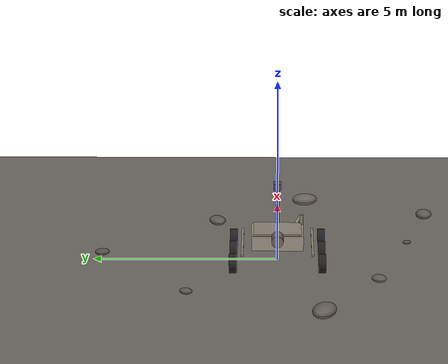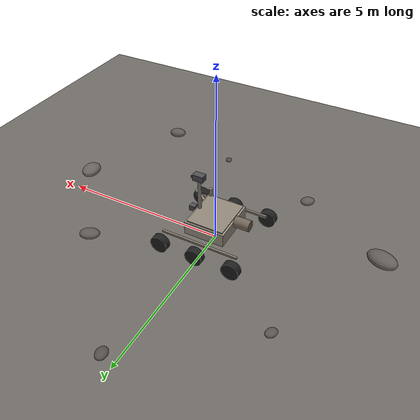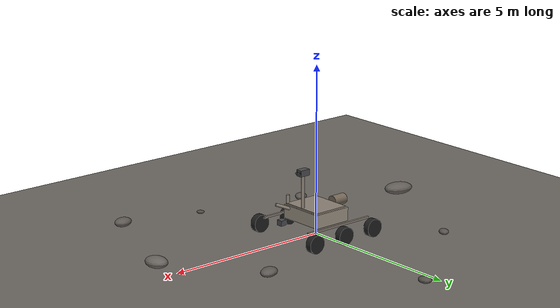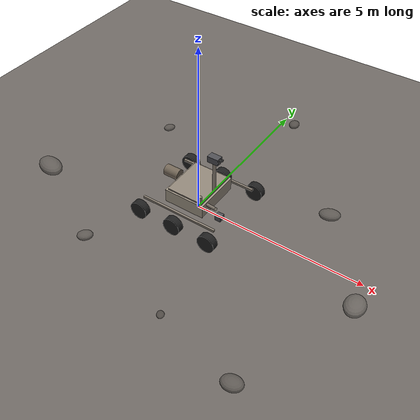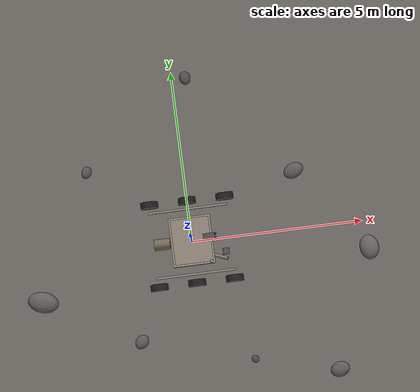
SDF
<?xml version="1.0"?>
<sdf version="1.9">
  <world name="moon">
    <!-- Physics. Plugin filenames are Fortress (ignition-gazebo*); on
         Harmonic these become gz-sim-*. Either is fine — Ignition keeps
         backward-compatible aliases. -->
    <plugin filename="ignition-gazebo-physics-system"          name="ignition::gazebo::systems::Physics"/>
    <plugin filename="ignition-gazebo-user-commands-system"    name="ignition::gazebo::systems::UserCommands"/>
    <plugin filename="ignition-gazebo-scene-broadcaster-system" name="ignition::gazebo::systems::SceneBroadcaster"/>
    <plugin filename="ignition-gazebo-contact-system"          name="ignition::gazebo::systems::Contact"/>

    <physics name="default" type="ignored">
      <max_step_size>0.004</max_step_size>
      <real_time_factor>1.0</real_time_factor>
    </physics>

    <!-- Lunar gravity -->
    <gravity>0 0 -1.622</gravity>

    <!-- Scene: deep space backdrop, low ambient (Moon has no atmosphere) -->
    <scene>
      <ambient>0.04 0.04 0.04 1</ambient>
      <background>0.0 0.0 0.0 1</background>
      <grid>false</grid>
      <origin_visual>false</origin_visual>
    </scene>

    <!-- Sun (single hard directional light, like real lunar surface) -->
    <light type="directional" name="sun">
      <cast_shadows>true</cast_shadows>
      <pose>0 0 100 0 0.55 -0.6</pose>
      <diffuse>1.0 0.98 0.92 1</diffuse>
      <specular>0.4 0.4 0.4 1</specular>
      <direction>-0.6 -0.4 -0.7</direction>
    </light>

    <!-- Ground plane: 200x200, Moon-gray regolith colour -->
    <model name="lunar_ground">
      <static>true</static>
      <link name="link">
        <collision name="collision">
          <geometry><plane><normal>0 0 1</normal><size>200 200</size></plane></geometry>
        </collision>
        <visual name="visual">
          <geometry><plane><normal>0 0 1</normal><size>200 200</size></plane></geometry>
          <material>
            <ambient>0.18 0.17 0.16 1</ambient>
            <diffuse>0.42 0.40 0.38 1</diffuse>
            <specular>0.05 0.05 0.05 1</specular>
          </material>
        </visual>
      </link>
    </model>

    <!-- Scattered rocks (ellipsoids, varying poses) -->
    <model name="rock_1">
      <static>true</static><pose>3.2 1.7 0.10 0 0 0.4</pose>
      <link name="l"><visual name="v"><geometry><ellipsoid><radii>0.30 0.22 0.12</radii></ellipsoid></geometry>
        <material><ambient>0.18 0.17 0.16 1</ambient><diffuse>0.36 0.34 0.32 1</diffuse></material></visual></link>
    </model>
    <model name="rock_2">
      <static>true</static><pose>-2.8 2.4 0.07 0 0 1.1</pose>
      <link name="l"><visual name="v"><geometry><ellipsoid><radii>0.18 0.14 0.08</radii></ellipsoid></geometry>
        <material><ambient>0.18 0.17 0.16 1</ambient><diffuse>0.34 0.32 0.30 1</diffuse></material></visual></link>
    </model>
    <model name="rock_3">
      <static>true</static><pose>-4.5 -1.2 0.16 0 0 -0.3</pose>
      <link name="l"><visual name="v"><geometry><ellipsoid><radii>0.45 0.30 0.18</radii></ellipsoid></geometry>
        <material><ambient>0.20 0.19 0.17 1</ambient><diffuse>0.38 0.36 0.34 1</diffuse></material></visual></link>
    </model>
    <model name="rock_4">
      <static>true</static><pose>1.4 -3.6 0.05 0 0 2.1</pose>
      <link name="l"><visual name="v"><geometry><ellipsoid><radii>0.12 0.10 0.05</radii></ellipsoid></geometry>
        <material><ambient>0.18 0.17 0.16 1</ambient><diffuse>0.30 0.28 0.26 1</diffuse></material></visual></link>
    </model>
    <model name="rock_5">
      <static>true</static><pose>-1.8 -2.7 0.09 0 0 0.8</pose>
      <link name="l"><visual name="v"><geometry><ellipsoid><radii>0.22 0.18 0.10</radii></ellipsoid></geometry>
        <material><ambient>0.19 0.18 0.16 1</ambient><diffuse>0.36 0.34 0.32 1</diffuse></material></visual></link>
    </model>
    <model name="rock_6">
      <static>true</static><pose>5.1 -0.8 0.14 0 0 1.7</pose>
      <link name="l"><visual name="v"><geometry><ellipsoid><radii>0.36 0.28 0.16</radii></ellipsoid></geometry>
        <material><ambient>0.20 0.19 0.17 1</ambient><diffuse>0.40 0.38 0.36 1</diffuse></material></visual></link>
    </model>
    <model name="rock_7">
      <static>true</static><pose>0.4 4.8 0.08 0 0 -1.4</pose>
      <link name="l"><visual name="v"><geometry><ellipsoid><radii>0.20 0.16 0.09</radii></ellipsoid></geometry>
        <material><ambient>0.17 0.16 0.15 1</ambient><diffuse>0.32 0.30 0.28 1</diffuse></material></visual></link>
    </model>
    <model name="rock_8">
      <static>true</static><pose>3.8 -4.2 0.11 0 0 0.2</pose>
      <link name="l"><visual name="v"><geometry><ellipsoid><radii>0.28 0.22 0.13</radii></ellipsoid></geometry>
        <material><ambient>0.18 0.17 0.16 1</ambient><diffuse>0.36 0.34 0.32 1</diffuse></material></visual></link>
    </model>

    <!-- Perseverance rover (model lives at /opt/sim/models/perseverance) -->
    <include>
      <uri>model://perseverance</uri>
      <name>perseverance</name>
      <pose>0 0 0 0 0 0</pose>
    </include>
  </world>
</sdf>

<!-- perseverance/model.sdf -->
<sdf version="1.9">
  <model name="perseverance">
    <static>true</static>

    <!-- Main body (deck) -->
    <link name="body">
      <pose>0 0 0.65 0 0 0</pose>
      <inertial>
        <mass>700</mass>
        <inertia><ixx>120</ixx><iyy>140</iyy><izz>200</izz></inertia>
      </inertial>
      <visual name="deck">
        <geometry><box><size>1.20 1.40 0.40</size></box></geometry>
        <material>
          <ambient>0.32 0.30 0.27 1</ambient>
          <diffuse>0.62 0.58 0.52 1</diffuse>
          <specular>0.30 0.30 0.30 1</specular>
        </material>
      </visual>
      <visual name="top_deck">
        <pose>0 0 0.22 0 0 0</pose>
        <geometry><box><size>1.10 1.30 0.04</size></box></geometry>
        <material><ambient>0.30 0.28 0.25 1</ambient><diffuse>0.55 0.51 0.46 1</diffuse></material>
      </visual>
    </link>

    <!-- RTG: cylindrical generator at the rear -->
    <link name="rtg">
      <pose>-0.85 0 0.85 0 1.5708 0</pose>
      <visual name="rtg_body">
        <geometry><cylinder><radius>0.16</radius><length>0.45</length></cylinder></geometry>
        <material>
          <ambient>0.25 0.22 0.18 1</ambient>
          <diffuse>0.45 0.40 0.34 1</diffuse>
          <specular>0.25 0.25 0.25 1</specular>
        </material>
      </visual>
    </link>

    <!-- Mast: vertical pole + camera "head" -->
    <link name="mast_pole">
      <pose>0.50 0 1.30 0 0 0</pose>
      <visual name="pole">
        <geometry><cylinder><radius>0.05</radius><length>1.20</length></cylinder></geometry>
        <material><ambient>0.30 0.28 0.25 1</ambient><diffuse>0.55 0.51 0.46 1</diffuse></material>
      </visual>
    </link>
    <link name="mast_head">
      <pose>0.50 0 1.95 0 0 0</pose>
      <visual name="head">
        <geometry><box><size>0.32 0.20 0.18</size></box></geometry>
        <material><ambient>0.20 0.20 0.22 1</ambient><diffuse>0.30 0.30 0.32 1</diffuse></material>
      </visual>
      <visual name="cam_left">
        <pose>0.18 0.06 0 0 1.5708 0</pose>
        <geometry><cylinder><radius>0.035</radius><length>0.06</length></cylinder></geometry>
        <material><ambient>0.05 0.05 0.05 1</ambient><diffuse>0.10 0.10 0.10 1</diffuse><specular>0.6 0.6 0.6 1</specular></material>
      </visual>
      <visual name="cam_right">
        <pose>0.18 -0.06 0 0 1.5708 0</pose>
        <geometry><cylinder><radius>0.035</radius><length>0.06</length></cylinder></geometry>
        <material><ambient>0.05 0.05 0.05 1</ambient><diffuse>0.10 0.10 0.10 1</diffuse><specular>0.6 0.6 0.6 1</specular></material>
      </visual>
    </link>

    <!-- Robotic arm in stowed pose along the front-right of the deck -->
    <link name="arm_segment_1">
      <pose>0.50 -0.65 0.85 0 0 -0.4</pose>
      <visual name="v">
        <geometry><cylinder><radius>0.05</radius><length>0.55</length></cylinder></geometry>
        <material><ambient>0.30 0.28 0.25 1</ambient><diffuse>0.55 0.51 0.46 1</diffuse></material>
      </visual>
    </link>
    <link name="arm_segment_2">
      <pose>0.78 -0.55 0.85 0 1.2 -0.4</pose>
      <visual name="v">
        <geometry><cylinder><radius>0.045</radius><length>0.45</length></cylinder></geometry>
        <material><ambient>0.30 0.28 0.25 1</ambient><diffuse>0.55 0.51 0.46 1</diffuse></material>
      </visual>
    </link>
    <link name="arm_turret">
      <pose>0.95 -0.40 0.45 0 0 0</pose>
      <visual name="v">
        <geometry><box><size>0.18 0.18 0.16</size></box></geometry>
        <material><ambient>0.20 0.20 0.22 1</ambient><diffuse>0.30 0.30 0.32 1</diffuse></material>
      </visual>
    </link>

    <!-- Rocker-bogie suspension: 6 wheels, 3 per side.
         Wheel d=0.525 m, w=0.20 m. Centres at z=0.26 (on flat
         ground), track ±1.20 m, x = +1.10 / 0 / -1.10. -->
    <link name="wheel_fl">
      <pose>1.10 1.20 0.26 1.5708 0 0</pose>
      <visual name="v"><geometry><cylinder><radius>0.26</radius><length>0.20</length></cylinder></geometry>
        <material><ambient>0.06 0.06 0.06 1</ambient><diffuse>0.12 0.12 0.12 1</diffuse></material></visual>
    </link>
    <link name="wheel_ml">
      <pose>0.00 1.20 0.26 1.5708 0 0</pose>
      <visual name="v"><geometry><cylinder><radius>0.26</radius><length>0.20</length></cylinder></geometry>
        <material><ambient>0.06 0.06 0.06 1</ambient><diffuse>0.12 0.12 0.12 1</diffuse></material></visual>
    </link>
    <link name="wheel_rl">
      <pose>-1.10 1.20 0.26 1.5708 0 0</pose>
      <visual name="v"><geometry><cylinder><radius>0.26</radius><length>0.20</length></cylinder></geometry>
        <material><ambient>0.06 0.06 0.06 1</ambient><diffuse>0.12 0.12 0.12 1</diffuse></material></visual>
    </link>
    <link name="wheel_fr">
      <pose>1.10 -1.20 0.26 1.5708 0 0</pose>
      <visual name="v"><geometry><cylinder><radius>0.26</radius><length>0.20</length></cylinder></geometry>
        <material><ambient>0.06 0.06 0.06 1</ambient><diffuse>0.12 0.12 0.12 1</diffuse></material></visual>
    </link>
    <link name="wheel_mr">
      <pose>0.00 -1.20 0.26 1.5708 0 0</pose>
      <visual name="v"><geometry><cylinder><radius>0.26</radius><length>0.20</length></cylinder></geometry>
        <material><ambient>0.06 0.06 0.06 1</ambient><diffuse>0.12 0.12 0.12 1</diffuse></material></visual>
    </link>
    <link name="wheel_rr">
      <pose>-1.10 -1.20 0.26 1.5708 0 0</pose>
      <visual name="v"><geometry><cylinder><radius>0.26</radius><length>0.20</length></cylinder></geometry>
        <material><ambient>0.06 0.06 0.06 1</ambient><diffuse>0.12 0.12 0.12 1</diffuse></material></visual>
    </link>

    <!-- Rocker arms (visual only) -->
    <link name="rocker_l">
      <pose>0 0.95 0.50 0 0 0</pose>
      <visual name="v">
        <geometry><box><size>2.30 0.06 0.06</size></box></geometry>
        <material><ambient>0.30 0.28 0.25 1</ambient><diffuse>0.55 0.51 0.46 1</diffuse></material>
      </visual>
    </link>
    <link name="rocker_r">
      <pose>0 -0.95 0.50 0 0 0</pose>
      <visual name="v">
        <geometry><box><size>2.30 0.06 0.06</size></box></geometry>
        <material><ambient>0.30 0.28 0.25 1</ambient><diffuse>0.55 0.51 0.46 1</diffuse></material>
      </visual>
    </link>
  </model>
</sdf>
